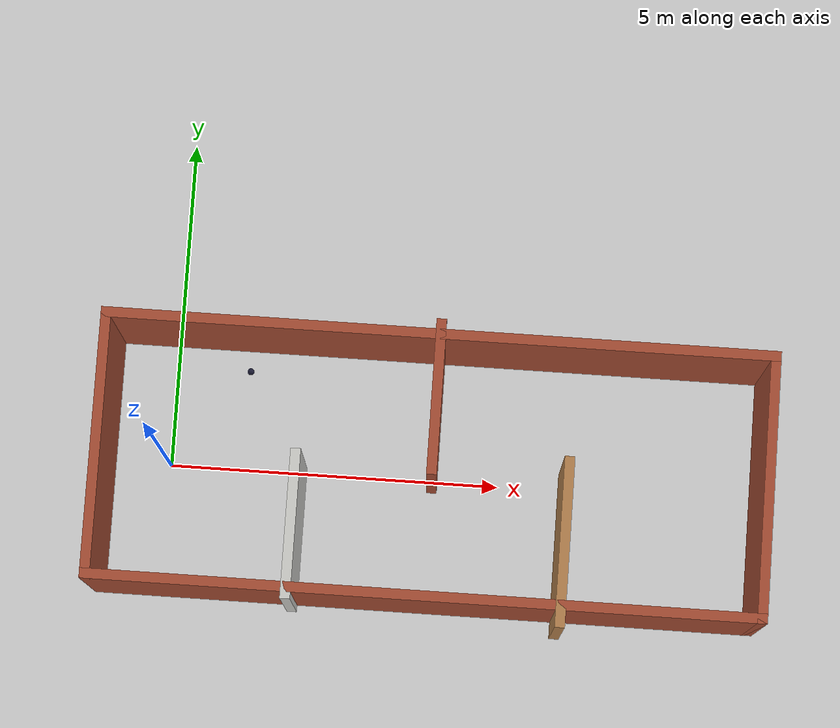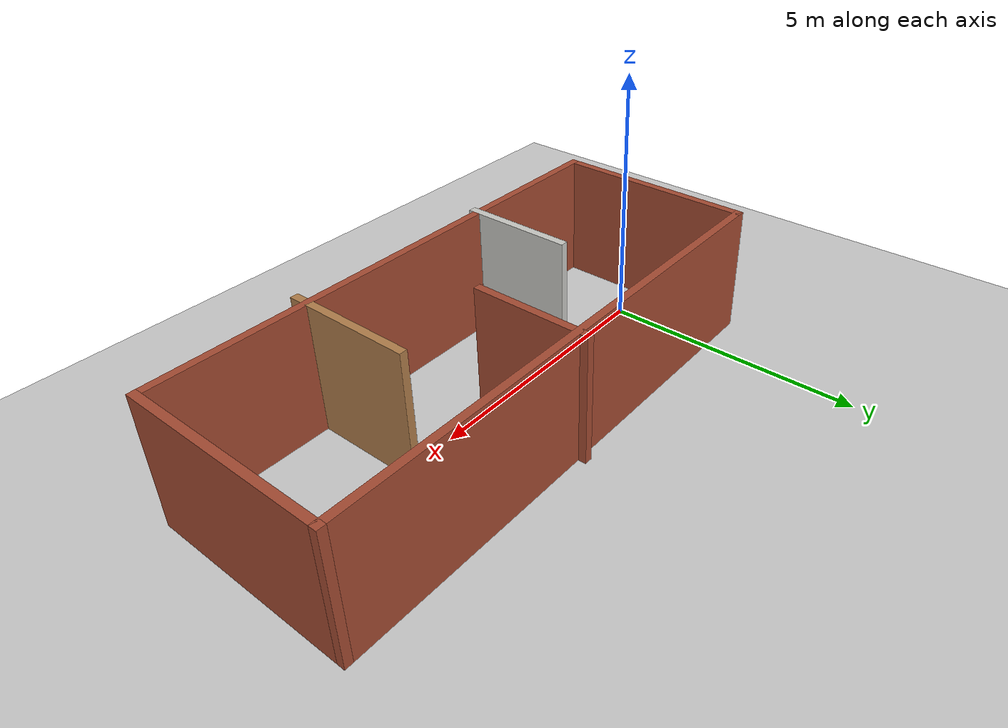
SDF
<sdf version='1.6'>
  <world name='default'>
    <plugin name="ros_interface_plugin" filename="librotors_gazebo_ros_interface_plugin.so"/>
    <light name='sun' type='directional'>
      <cast_shadows>1</cast_shadows>
      <pose frame=''>0 0 10 0 -0 0</pose>
      <diffuse>0.8 0.8 0.8 1</diffuse>
      <specular>0.2 0.2 0.2 1</specular>
      <attenuation>
        <range>1000</range>
        <constant>0.9</constant>
        <linear>0.01</linear>
        <quadratic>0.001</quadratic>
      </attenuation>
      <direction>-0.5 0.1 -0.9</direction>
    </light>
    <model name='bounding'>
    <pose frame=''>4 0 0 0 0 0</pose>
    <link name='Wall_0'>
      <collision name='Wall_0_Collision'>
        <geometry>
          <box>
            <size>10 0.15 2.5</size>
          </box>
        </geometry>
        <pose frame=''>0 0 1.25 0 -0 0</pose>
      </collision>
      <visual name='Wall_0_Visual'>
        <pose frame=''>0 0 1.25 0 -0 0</pose>
        <geometry>
          <box>
            <size>10 0.15 2.5</size>
          </box>
        </geometry>
        <material>
          <script>
            <uri>file://media/materials/scripts/gazebo.material</uri>
            <name>Gazebo/Bricks</name>
          </script>
          <ambient>1 1 1 1</ambient>
        </material>
        <meta>
          <layer>0</layer>
        </meta>
      </visual>
      <pose frame=''>0 1.925 0 0 -0 3.14159</pose>
    </link>
    <link name='Wall_1'>
      <collision name='Wall_1_Collision'>
        <geometry>
          <box>
            <size>4 0.15 2.5</size>
          </box>
        </geometry>
        <pose frame=''>0 0 1.25 0 -0 0</pose>
      </collision>
      <visual name='Wall_1_Visual'>
        <pose frame=''>0 0 1.25 0 -0 0</pose>
        <geometry>
          <box>
            <size>4 0.15 2.5</size>
          </box>
        </geometry>
        <material>
          <script>
            <uri>file://media/materials/scripts/gazebo.material</uri>
            <name>Gazebo/Bricks</name>
          </script>
          <ambient>1 1 1 1</ambient>
        </material>
        <meta>
          <layer>0</layer>
        </meta>
      </visual>
      <pose frame=''>-4.925 0 0 0 -0 -1.5708</pose>
    </link>
    <link name='Wall_2'>
      <collision name='Wall_2_Collision'>
        <geometry>
          <box>
            <size>10 0.15 2.5</size>
          </box>
        </geometry>
        <pose frame=''>0 0 1.25 0 -0 0</pose>
      </collision>
      <visual name='Wall_2_Visual'>
        <pose frame=''>0 0 1.25 0 -0 0</pose>
        <geometry>
          <box>
            <size>10 0.15 2.5</size>
          </box>
        </geometry>
        <material>
          <script>
            <uri>file://media/materials/scripts/gazebo.material</uri>
            <name>Gazebo/Bricks</name>
          </script>
          <ambient>1 1 1 1</ambient>
        </material>
        <meta>
          <layer>0</layer>
        </meta>
      </visual>
      <pose frame=''>0 -1.925 0 0 -0 0</pose>
    </link>
    <link name='Wall_3'>
      <collision name='Wall_3_Collision'>
        <geometry>
          <box>
            <size>4 0.15 2.5</size>
          </box>
        </geometry>
        <pose frame=''>0 0 1.25 0 -0 0</pose>
      </collision>
      <visual name='Wall_3_Visual'>
        <pose frame=''>0 0 1.25 0 -0 0</pose>
        <geometry>
          <box>
            <size>4 0.15 2.5</size>
          </box>
        </geometry>
        <material>
          <script>
            <uri>file://media/materials/scripts/gazebo.material</uri>
            <name>Gazebo/Bricks</name>
          </script>
          <ambient>1 1 1 1</ambient>
        </material>
        <meta>
          <layer>0</layer>
        </meta>
      </visual>
      <pose frame=''>4.925 0 0 0 -0 1.5708</pose>
    </link>
    <static>1</static>
  </model>
  <model name='wall1'>
    <pose frame='world'>2 -1 0 0 -0 0</pose>
    <link name='Wall_5'>
     <inertial>
        <mass>1000</mass>
        <pose frame=''>0 0 0 0 -0 0</pose>
        <inertia>
          <ixx>522.708</ixx>
          <ixy>0</ixy>
          <ixz>0</ixz>
          <iyy>961.667</iyy>
          <iyz>0</iyz>
          <izz>442.708</izz>
        </inertia>
      </inertial>
      <collision name='Wall_5_Collision'>
        <geometry>
          <box>
            <size>2.2 0.15 2.5</size>
          </box>
        </geometry>
        <pose frame=''>0 0 1.25 0 -0 0</pose>
      </collision>
      <visual name='Wall_5_Visual'>
        <pose frame=''>0 0 1.25 0 -0 0</pose>
        <geometry>
          <box>
            <size>2.2 0.15 2.5</size>
          </box>
        </geometry>
        <material>
          <script>
            <uri>file://media/materials/scripts/gazebo.material</uri>
            <name>Gazebo/CeilingTiled</name>
          </script>
          <ambient>1 1 1 1</ambient>
        </material>
        <meta>
          <layer>0</layer>
        </meta>
      </visual>
      <pose frame=''>0 -0 0 0 -0 -1.5708</pose>
    </link>
  </model>
  <model name='wall2'>
    <pose frame='world'>4 1 0 0 -0 0</pose>
    <link name='Wall_5'>
     <inertial>
        <mass>1000</mass>
        <pose frame=''>0 0 0 0 -0 0</pose>
        <inertia>
          <ixx>522.708</ixx>
          <ixy>0</ixy>
          <ixz>0</ixz>
          <iyy>961.667</iyy>
          <iyz>0</iyz>
          <izz>442.708</izz>
        </inertia>
      </inertial>
      <collision name='Wall_5_Collision'>
        <geometry>
          <box>
            <size>2.3 0.15 2.5</size>
          </box>
        </geometry>
        <pose frame=''>0 0 1.25 0 -0 0</pose>
      </collision>
      <visual name='Wall_5_Visual'>
        <pose frame=''>0 0 1.25 0 -0 0</pose>
        <geometry>
          <box>
            <size>2.3 0.15 2.5</size>
          </box>
        </geometry>
        <material>
          <script>
            <uri>file://media/materials/scripts/gazebo.material</uri>
            <name>Gazebo/Bricks</name>
          </script>
          <ambient>1 1 1 1</ambient>
        </material>
        <meta>
          <layer>0</layer>
        </meta>
      </visual>
      <pose frame=''>0 -0 0 0 -0 -1.5708</pose>
    </link>
  </model>
  <model name='wall3'>
    <pose frame=''>6 -1 0 0 0 0</pose>
    <link name='Wall_5'>
     <inertial>
        <mass>1000</mass>
        <pose frame=''>0 0 0 0 -0 0</pose>
        <inertia>
          <ixx>522.708</ixx>
          <ixy>0</ixy>
          <ixz>0</ixz>
          <iyy>961.667</iyy>
          <iyz>0</iyz>
          <izz>442.708</izz>
        </inertia>
      </inertial>
      <collision name='Wall_5_Collision'>
        <geometry>
          <box>
            <size>2.5 0.15 2.5</size>
          </box>
        </geometry>
        <pose frame=''>0 0 1.25 0 -0 0</pose>
      </collision>
      <visual name='Wall_5_Visual'>
        <pose frame=''>0 0 1.25 0 -0 0</pose>
        <geometry>
          <box>
            <size>2.5 0.15 2.5</size>
          </box>
        </geometry>
        <material>
          <script>
            <uri>file://media/materials/scripts/gazebo.material</uri>
            <name>Gazebo/Wood</name>
          </script>
          <ambient>1 1 1 1</ambient>
        </material>
        <meta>
          <layer>0</layer>
        </meta>
      </visual>
      <pose frame=''>0 -0 0 0 -0 -1.5708</pose>
    </link>
  </model>
    <model name='ground_plane'>
      <static>1</static>
      <link name='link'>
        <collision name='collision'>
          <geometry>
            <plane>
              <normal>0 0 1</normal>
              <size>100 100</size>
            </plane>
          </geometry>
          <surface>
            <friction>
              <ode>
                <mu>100</mu>
                <mu2>50</mu2>
              </ode>
              <torsional>
                <ode/>
              </torsional>
            </friction>
            <contact>
              <ode/>
            </contact>
            <bounce/>
          </surface>
          <max_contacts>10</max_contacts>
        </collision>
        <visual name='visual'>
          <cast_shadows>0</cast_shadows>
          <geometry>
            <plane>
              <normal>0 0 1</normal>
              <size>100 100</size>
            </plane>
          </geometry>
          <material>
            <script>
              <uri>file://media/materials/scripts/gazebo.material</uri>
              <name>Gazebo/Grey</name>
            </script>
          </material>
        </visual>
        <self_collide>0</self_collide>
        <enable_wind>0</enable_wind>
        <kinematic>0</kinematic>
      </link>
    </model>
     <model name="target">
      <pose>1.2 1.32 1.5 0 0 0</pose>
      <static>0</static>
      <link name="link">
        <gravity>0</gravity>
        <collision name="collision">
          <geometry>
          <sphere>
            <radius>0.051</radius>
          </sphere>
        </geometry>
          <surface>
            <contact>
              <collide_without_contact>1</collide_without_contact>
            </contact>
          </surface>
        </collision>
        <visual name="visual">
          <material>
            <ambient>0.1 0.1 0.1 1</ambient>
            <diffuse>0.1 0.1 0.2 1</diffuse>
            <specular>0 1 1 0</specular>
            <emissive>0 1 0 1</emissive>
          </material>
          <geometry>
          <sphere>
            <radius>0.051</radius>
          </sphere>
        </geometry>
        </visual>
      </link>
    </model>

    <gui fullscreen='0'>
      <camera name='user_camera'>
        <pose frame=''>16.8215 -12.0406 5.15207 0 0.275643 2.35619</pose>
        <view_controller>orbit</view_controller>
        <projection_type>perspective</projection_type>
      </camera>
    </gui>
  </world>
</sdf>
